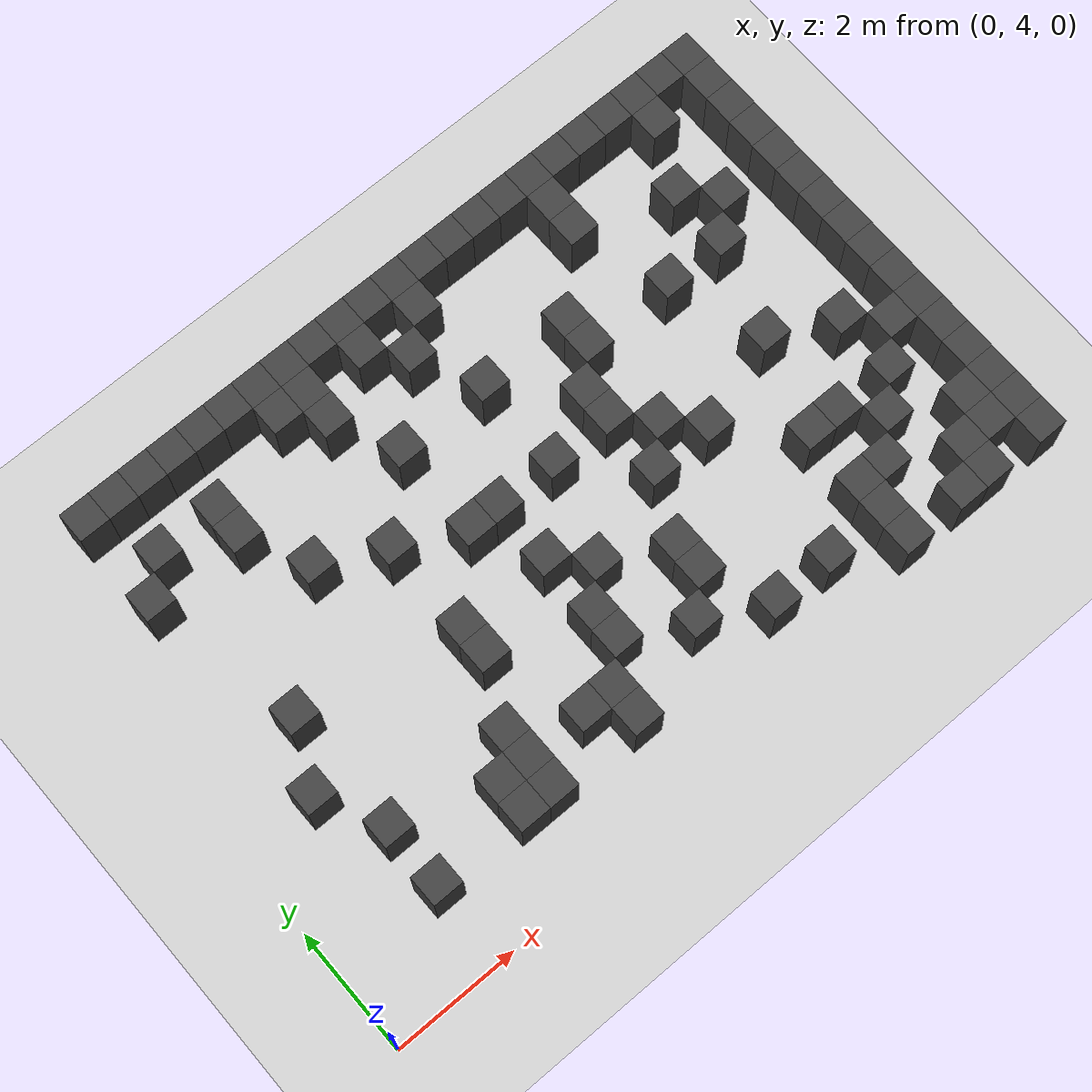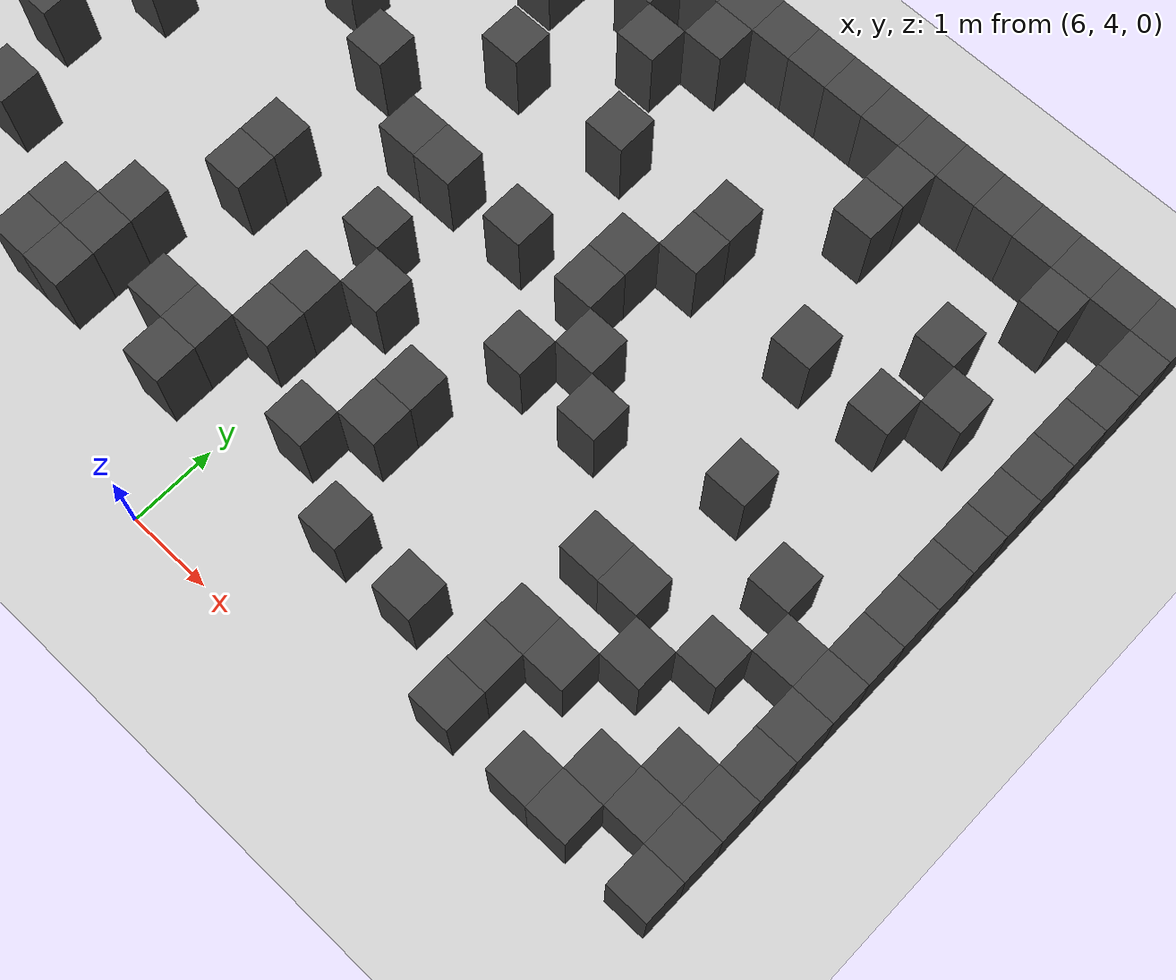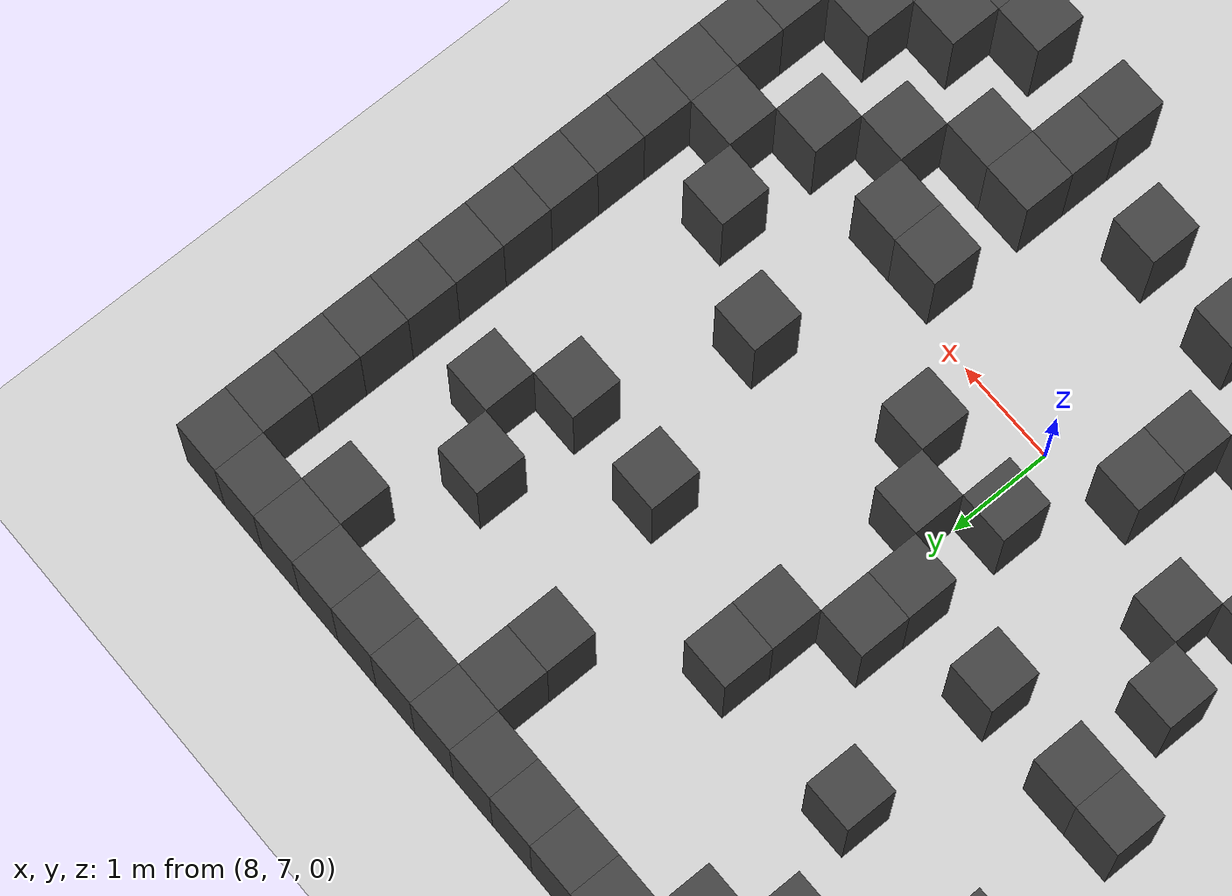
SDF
<sdf version="1.7">
 <world name="map_4009">
  <model name="ground_plane">
   <static>true</static>
   <link name="link">
    <collision name="collision">
     <geometry><plane><normal>0 0 1</normal><size>200 200</size></plane></geometry>
    </collision>
    <visual name="visual">
     <geometry><plane><normal>0 0 1</normal><size>200 200</size></plane></geometry>
     <material><ambient>0.8 0.8 0.8 1</ambient><diffuse>0.8 0.8 0.8 1</diffuse></material>
    </visual>
   </link>
  </model>
  <model name="maze_environment">
   <static>true</static>
   <link name="wall_27">
    <pose>1.250 12.250 0.500 0 0 0</pose>
    <collision name="col"><geometry><box><size>0.5 0.5 1.0</size></box></geometry></collision>
    <visual name="vis">
     <geometry><box><size>0.5 0.5 1.0</size></box></geometry>
     <material><ambient>0.15 0.15 0.15 1</ambient><diffuse>0.25 0.25 0.25 1</diffuse></material>
    </visual>
   </link>
   <link name="wall_28">
    <pose>1.750 12.250 0.500 0 0 0</pose>
    <collision name="col"><geometry><box><size>0.5 0.5 1.0</size></box></geometry></collision>
    <visual name="vis">
     <geometry><box><size>0.5 0.5 1.0</size></box></geometry>
     <material><ambient>0.15 0.15 0.15 1</ambient><diffuse>0.25 0.25 0.25 1</diffuse></material>
    </visual>
   </link>
   <link name="wall_29">
    <pose>2.250 12.250 0.500 0 0 0</pose>
    <collision name="col"><geometry><box><size>0.5 0.5 1.0</size></box></geometry></collision>
    <visual name="vis">
     <geometry><box><size>0.5 0.5 1.0</size></box></geometry>
     <material><ambient>0.15 0.15 0.15 1</ambient><diffuse>0.25 0.25 0.25 1</diffuse></material>
    </visual>
   </link>
   <link name="wall_30">
    <pose>2.750 12.250 0.500 0 0 0</pose>
    <collision name="col"><geometry><box><size>0.5 0.5 1.0</size></box></geometry></collision>
    <visual name="vis">
     <geometry><box><size>0.5 0.5 1.0</size></box></geometry>
     <material><ambient>0.15 0.15 0.15 1</ambient><diffuse>0.25 0.25 0.25 1</diffuse></material>
    </visual>
   </link>
   <link name="wall_31">
    <pose>3.250 12.250 0.500 0 0 0</pose>
    <collision name="col"><geometry><box><size>0.5 0.5 1.0</size></box></geometry></collision>
    <visual name="vis">
     <geometry><box><size>0.5 0.5 1.0</size></box></geometry>
     <material><ambient>0.15 0.15 0.15 1</ambient><diffuse>0.25 0.25 0.25 1</diffuse></material>
    </visual>
   </link>
   <link name="wall_32">
    <pose>3.750 12.250 0.500 0 0 0</pose>
    <collision name="col"><geometry><box><size>0.5 0.5 1.0</size></box></geometry></collision>
    <visual name="vis">
     <geometry><box><size>0.5 0.5 1.0</size></box></geometry>
     <material><ambient>0.15 0.15 0.15 1</ambient><diffuse>0.25 0.25 0.25 1</diffuse></material>
    </visual>
   </link>
   <link name="wall_33">
    <pose>4.250 12.250 0.500 0 0 0</pose>
    <collision name="col"><geometry><box><size>0.5 0.5 1.0</size></box></geometry></collision>
    <visual name="vis">
     <geometry><box><size>0.5 0.5 1.0</size></box></geometry>
     <material><ambient>0.15 0.15 0.15 1</ambient><diffuse>0.25 0.25 0.25 1</diffuse></material>
    </visual>
   </link>
   <link name="wall_34">
    <pose>4.750 12.250 0.500 0 0 0</pose>
    <collision name="col"><geometry><box><size>0.5 0.5 1.0</size></box></geometry></collision>
    <visual name="vis">
     <geometry><box><size>0.5 0.5 1.0</size></box></geometry>
     <material><ambient>0.15 0.15 0.15 1</ambient><diffuse>0.25 0.25 0.25 1</diffuse></material>
    </visual>
   </link>
   <link name="wall_35">
    <pose>5.250 12.250 0.500 0 0 0</pose>
    <collision name="col"><geometry><box><size>0.5 0.5 1.0</size></box></geometry></collision>
    <visual name="vis">
     <geometry><box><size>0.5 0.5 1.0</size></box></geometry>
     <material><ambient>0.15 0.15 0.15 1</ambient><diffuse>0.25 0.25 0.25 1</diffuse></material>
    </visual>
   </link>
   <link name="wall_36">
    <pose>5.750 12.250 0.500 0 0 0</pose>
    <collision name="col"><geometry><box><size>0.5 0.5 1.0</size></box></geometry></collision>
    <visual name="vis">
     <geometry><box><size>0.5 0.5 1.0</size></box></geometry>
     <material><ambient>0.15 0.15 0.15 1</ambient><diffuse>0.25 0.25 0.25 1</diffuse></material>
    </visual>
   </link>
   <link name="wall_37">
    <pose>6.250 12.250 0.500 0 0 0</pose>
    <collision name="col"><geometry><box><size>0.5 0.5 1.0</size></box></geometry></collision>
    <visual name="vis">
     <geometry><box><size>0.5 0.5 1.0</size></box></geometry>
     <material><ambient>0.15 0.15 0.15 1</ambient><diffuse>0.25 0.25 0.25 1</diffuse></material>
    </visual>
   </link>
   <link name="wall_38">
    <pose>6.750 12.250 0.500 0 0 0</pose>
    <collision name="col"><geometry><box><size>0.5 0.5 1.0</size></box></geometry></collision>
    <visual name="vis">
     <geometry><box><size>0.5 0.5 1.0</size></box></geometry>
     <material><ambient>0.15 0.15 0.15 1</ambient><diffuse>0.25 0.25 0.25 1</diffuse></material>
    </visual>
   </link>
   <link name="wall_39">
    <pose>7.250 12.250 0.500 0 0 0</pose>
    <collision name="col"><geometry><box><size>0.5 0.5 1.0</size></box></geometry></collision>
    <visual name="vis">
     <geometry><box><size>0.5 0.5 1.0</size></box></geometry>
     <material><ambient>0.15 0.15 0.15 1</ambient><diffuse>0.25 0.25 0.25 1</diffuse></material>
    </visual>
   </link>
   <link name="wall_40">
    <pose>7.750 12.250 0.500 0 0 0</pose>
    <collision name="col"><geometry><box><size>0.5 0.5 1.0</size></box></geometry></collision>
    <visual name="vis">
     <geometry><box><size>0.5 0.5 1.0</size></box></geometry>
     <material><ambient>0.15 0.15 0.15 1</ambient><diffuse>0.25 0.25 0.25 1</diffuse></material>
    </visual>
   </link>
   <link name="wall_41">
    <pose>8.250 12.250 0.500 0 0 0</pose>
    <collision name="col"><geometry><box><size>0.5 0.5 1.0</size></box></geometry></collision>
    <visual name="vis">
     <geometry><box><size>0.5 0.5 1.0</size></box></geometry>
     <material><ambient>0.15 0.15 0.15 1</ambient><diffuse>0.25 0.25 0.25 1</diffuse></material>
    </visual>
   </link>
   <link name="wall_42">
    <pose>8.750 12.250 0.500 0 0 0</pose>
    <collision name="col"><geometry><box><size>0.5 0.5 1.0</size></box></geometry></collision>
    <visual name="vis">
     <geometry><box><size>0.5 0.5 1.0</size></box></geometry>
     <material><ambient>0.15 0.15 0.15 1</ambient><diffuse>0.25 0.25 0.25 1</diffuse></material>
    </visual>
   </link>
   <link name="wall_43">
    <pose>9.250 12.250 0.500 0 0 0</pose>
    <collision name="col"><geometry><box><size>0.5 0.5 1.0</size></box></geometry></collision>
    <visual name="vis">
     <geometry><box><size>0.5 0.5 1.0</size></box></geometry>
     <material><ambient>0.15 0.15 0.15 1</ambient><diffuse>0.25 0.25 0.25 1</diffuse></material>
    </visual>
   </link>
   <link name="wall_44">
    <pose>9.750 12.250 0.500 0 0 0</pose>
    <collision name="col"><geometry><box><size>0.5 0.5 1.0</size></box></geometry></collision>
    <visual name="vis">
     <geometry><box><size>0.5 0.5 1.0</size></box></geometry>
     <material><ambient>0.15 0.15 0.15 1</ambient><diffuse>0.25 0.25 0.25 1</diffuse></material>
    </visual>
   </link>
   <link name="wall_45">
    <pose>10.250 12.250 0.500 0 0 0</pose>
    <collision name="col"><geometry><box><size>0.5 0.5 1.0</size></box></geometry></collision>
    <visual name="vis">
     <geometry><box><size>0.5 0.5 1.0</size></box></geometry>
     <material><ambient>0.15 0.15 0.15 1</ambient><diffuse>0.25 0.25 0.25 1</diffuse></material>
    </visual>
   </link>
   <link name="wall_46">
    <pose>10.750 12.250 0.500 0 0 0</pose>
    <collision name="col"><geometry><box><size>0.5 0.5 1.0</size></box></geometry></collision>
    <visual name="vis">
     <geometry><box><size>0.5 0.5 1.0</size></box></geometry>
     <material><ambient>0.15 0.15 0.15 1</ambient><diffuse>0.25 0.25 0.25 1</diffuse></material>
    </visual>
   </link>
   <link name="wall_47">
    <pose>11.250 12.250 0.500 0 0 0</pose>
    <collision name="col"><geometry><box><size>0.5 0.5 1.0</size></box></geometry></collision>
    <visual name="vis">
     <geometry><box><size>0.5 0.5 1.0</size></box></geometry>
     <material><ambient>0.15 0.15 0.15 1</ambient><diffuse>0.25 0.25 0.25 1</diffuse></material>
    </visual>
   </link>
   <link name="wall_48">
    <pose>11.750 12.250 0.500 0 0 0</pose>
    <collision name="col"><geometry><box><size>0.5 0.5 1.0</size></box></geometry></collision>
    <visual name="vis">
     <geometry><box><size>0.5 0.5 1.0</size></box></geometry>
     <material><ambient>0.15 0.15 0.15 1</ambient><diffuse>0.25 0.25 0.25 1</diffuse></material>
    </visual>
   </link>
   <link name="wall_49">
    <pose>12.250 12.250 0.500 0 0 0</pose>
    <collision name="col"><geometry><box><size>0.5 0.5 1.0</size></box></geometry></collision>
    <visual name="vis">
     <geometry><box><size>0.5 0.5 1.0</size></box></geometry>
     <material><ambient>0.15 0.15 0.15 1</ambient><diffuse>0.25 0.25 0.25 1</diffuse></material>
    </visual>
   </link>
   <link name="wall_57">
    <pose>4.250 11.750 0.500 0 0 0</pose>
    <collision name="col"><geometry><box><size>0.5 0.5 1.0</size></box></geometry></collision>
    <visual name="vis">
     <geometry><box><size>0.5 0.5 1.0</size></box></geometry>
     <material><ambient>0.15 0.15 0.15 1</ambient><diffuse>0.25 0.25 0.25 1</diffuse></material>
    </visual>
   </link>
   <link name="wall_58">
    <pose>4.750 11.750 0.500 0 0 0</pose>
    <collision name="col"><geometry><box><size>0.5 0.5 1.0</size></box></geometry></collision>
    <visual name="vis">
     <geometry><box><size>0.5 0.5 1.0</size></box></geometry>
     <material><ambient>0.15 0.15 0.15 1</ambient><diffuse>0.25 0.25 0.25 1</diffuse></material>
    </visual>
   </link>
   <link name="wall_59">
    <pose>5.750 11.750 0.500 0 0 0</pose>
    <collision name="col"><geometry><box><size>0.5 0.5 1.0</size></box></geometry></collision>
    <visual name="vis">
     <geometry><box><size>0.5 0.5 1.0</size></box></geometry>
     <material><ambient>0.15 0.15 0.15 1</ambient><diffuse>0.25 0.25 0.25 1</diffuse></material>
    </visual>
   </link>
   <link name="wall_60">
    <pose>6.750 11.750 0.500 0 0 0</pose>
    <collision name="col"><geometry><box><size>0.5 0.5 1.0</size></box></geometry></collision>
    <visual name="vis">
     <geometry><box><size>0.5 0.5 1.0</size></box></geometry>
     <material><ambient>0.15 0.15 0.15 1</ambient><diffuse>0.25 0.25 0.25 1</diffuse></material>
    </visual>
   </link>
   <link name="wall_61">
    <pose>9.250 11.750 0.500 0 0 0</pose>
    <collision name="col"><geometry><box><size>0.5 0.5 1.0</size></box></geometry></collision>
    <visual name="vis">
     <geometry><box><size>0.5 0.5 1.0</size></box></geometry>
     <material><ambient>0.15 0.15 0.15 1</ambient><diffuse>0.25 0.25 0.25 1</diffuse></material>
    </visual>
   </link>
   <link name="wall_62">
    <pose>11.250 11.750 0.500 0 0 0</pose>
    <collision name="col"><geometry><box><size>0.5 0.5 1.0</size></box></geometry></collision>
    <visual name="vis">
     <geometry><box><size>0.5 0.5 1.0</size></box></geometry>
     <material><ambient>0.15 0.15 0.15 1</ambient><diffuse>0.25 0.25 0.25 1</diffuse></material>
    </visual>
   </link>
   <link name="wall_63">
    <pose>12.250 11.750 0.500 0 0 0</pose>
    <collision name="col"><geometry><box><size>0.5 0.5 1.0</size></box></geometry></collision>
    <visual name="vis">
     <geometry><box><size>0.5 0.5 1.0</size></box></geometry>
     <material><ambient>0.15 0.15 0.15 1</ambient><diffuse>0.25 0.25 0.25 1</diffuse></material>
    </visual>
   </link>
   <link name="wall_73">
    <pose>1.750 11.250 0.500 0 0 0</pose>
    <collision name="col"><geometry><box><size>0.5 0.5 1.0</size></box></geometry></collision>
    <visual name="vis">
     <geometry><box><size>0.5 0.5 1.0</size></box></geometry>
     <material><ambient>0.15 0.15 0.15 1</ambient><diffuse>0.25 0.25 0.25 1</diffuse></material>
    </visual>
   </link>
   <link name="wall_74">
    <pose>2.750 11.250 0.500 0 0 0</pose>
    <collision name="col"><geometry><box><size>0.5 0.5 1.0</size></box></geometry></collision>
    <visual name="vis">
     <geometry><box><size>0.5 0.5 1.0</size></box></geometry>
     <material><ambient>0.15 0.15 0.15 1</ambient><diffuse>0.25 0.25 0.25 1</diffuse></material>
    </visual>
   </link>
   <link name="wall_75">
    <pose>4.750 11.250 0.500 0 0 0</pose>
    <collision name="col"><geometry><box><size>0.5 0.5 1.0</size></box></geometry></collision>
    <visual name="vis">
     <geometry><box><size>0.5 0.5 1.0</size></box></geometry>
     <material><ambient>0.15 0.15 0.15 1</ambient><diffuse>0.25 0.25 0.25 1</diffuse></material>
    </visual>
   </link>
   <link name="wall_76">
    <pose>6.250 11.250 0.500 0 0 0</pose>
    <collision name="col"><geometry><box><size>0.5 0.5 1.0</size></box></geometry></collision>
    <visual name="vis">
     <geometry><box><size>0.5 0.5 1.0</size></box></geometry>
     <material><ambient>0.15 0.15 0.15 1</ambient><diffuse>0.25 0.25 0.25 1</diffuse></material>
    </visual>
   </link>
   <link name="wall_77">
    <pose>9.250 11.250 0.500 0 0 0</pose>
    <collision name="col"><geometry><box><size>0.5 0.5 1.0</size></box></geometry></collision>
    <visual name="vis">
     <geometry><box><size>0.5 0.5 1.0</size></box></geometry>
     <material><ambient>0.15 0.15 0.15 1</ambient><diffuse>0.25 0.25 0.25 1</diffuse></material>
    </visual>
   </link>
   <link name="wall_78">
    <pose>12.250 11.250 0.500 0 0 0</pose>
    <collision name="col"><geometry><box><size>0.5 0.5 1.0</size></box></geometry></collision>
    <visual name="vis">
     <geometry><box><size>0.5 0.5 1.0</size></box></geometry>
     <material><ambient>0.15 0.15 0.15 1</ambient><diffuse>0.25 0.25 0.25 1</diffuse></material>
    </visual>
   </link>
   <link name="wall_83">
    <pose>1.250 10.750 0.500 0 0 0</pose>
    <collision name="col"><geometry><box><size>0.5 0.5 1.0</size></box></geometry></collision>
    <visual name="vis">
     <geometry><box><size>0.5 0.5 1.0</size></box></geometry>
     <material><ambient>0.15 0.15 0.15 1</ambient><diffuse>0.25 0.25 0.25 1</diffuse></material>
    </visual>
   </link>
   <link name="wall_84">
    <pose>2.750 10.750 0.500 0 0 0</pose>
    <collision name="col"><geometry><box><size>0.5 0.5 1.0</size></box></geometry></collision>
    <visual name="vis">
     <geometry><box><size>0.5 0.5 1.0</size></box></geometry>
     <material><ambient>0.15 0.15 0.15 1</ambient><diffuse>0.25 0.25 0.25 1</diffuse></material>
    </visual>
   </link>
   <link name="wall_85">
    <pose>10.750 10.750 0.500 0 0 0</pose>
    <collision name="col"><geometry><box><size>0.5 0.5 1.0</size></box></geometry></collision>
    <visual name="vis">
     <geometry><box><size>0.5 0.5 1.0</size></box></geometry>
     <material><ambient>0.15 0.15 0.15 1</ambient><diffuse>0.25 0.25 0.25 1</diffuse></material>
    </visual>
   </link>
   <link name="wall_86">
    <pose>12.250 10.750 0.500 0 0 0</pose>
    <collision name="col"><geometry><box><size>0.5 0.5 1.0</size></box></geometry></collision>
    <visual name="vis">
     <geometry><box><size>0.5 0.5 1.0</size></box></geometry>
     <material><ambient>0.15 0.15 0.15 1</ambient><diffuse>0.25 0.25 0.25 1</diffuse></material>
    </visual>
   </link>
   <link name="wall_93">
    <pose>5.250 10.250 0.500 0 0 0</pose>
    <collision name="col"><geometry><box><size>0.5 0.5 1.0</size></box></geometry></collision>
    <visual name="vis">
     <geometry><box><size>0.5 0.5 1.0</size></box></geometry>
     <material><ambient>0.15 0.15 0.15 1</ambient><diffuse>0.25 0.25 0.25 1</diffuse></material>
    </visual>
   </link>
   <link name="wall_94">
    <pose>6.750 10.250 0.500 0 0 0</pose>
    <collision name="col"><geometry><box><size>0.5 0.5 1.0</size></box></geometry></collision>
    <visual name="vis">
     <geometry><box><size>0.5 0.5 1.0</size></box></geometry>
     <material><ambient>0.15 0.15 0.15 1</ambient><diffuse>0.25 0.25 0.25 1</diffuse></material>
    </visual>
   </link>
   <link name="wall_95">
    <pose>8.250 10.250 0.500 0 0 0</pose>
    <collision name="col"><geometry><box><size>0.5 0.5 1.0</size></box></geometry></collision>
    <visual name="vis">
     <geometry><box><size>0.5 0.5 1.0</size></box></geometry>
     <material><ambient>0.15 0.15 0.15 1</ambient><diffuse>0.25 0.25 0.25 1</diffuse></material>
    </visual>
   </link>
   <link name="wall_96">
    <pose>11.250 10.250 0.500 0 0 0</pose>
    <collision name="col"><geometry><box><size>0.5 0.5 1.0</size></box></geometry></collision>
    <visual name="vis">
     <geometry><box><size>0.5 0.5 1.0</size></box></geometry>
     <material><ambient>0.15 0.15 0.15 1</ambient><diffuse>0.25 0.25 0.25 1</diffuse></material>
    </visual>
   </link>
   <link name="wall_97">
    <pose>12.250 10.250 0.500 0 0 0</pose>
    <collision name="col"><geometry><box><size>0.5 0.5 1.0</size></box></geometry></collision>
    <visual name="vis">
     <geometry><box><size>0.5 0.5 1.0</size></box></geometry>
     <material><ambient>0.15 0.15 0.15 1</ambient><diffuse>0.25 0.25 0.25 1</diffuse></material>
    </visual>
   </link>
   <link name="wall_102">
    <pose>3.250 9.750 0.500 0 0 0</pose>
    <collision name="col"><geometry><box><size>0.5 0.5 1.0</size></box></geometry></collision>
    <visual name="vis">
     <geometry><box><size>0.5 0.5 1.0</size></box></geometry>
     <material><ambient>0.15 0.15 0.15 1</ambient><diffuse>0.25 0.25 0.25 1</diffuse></material>
    </visual>
   </link>
   <link name="wall_103">
    <pose>8.250 9.750 0.500 0 0 0</pose>
    <collision name="col"><geometry><box><size>0.5 0.5 1.0</size></box></geometry></collision>
    <visual name="vis">
     <geometry><box><size>0.5 0.5 1.0</size></box></geometry>
     <material><ambient>0.15 0.15 0.15 1</ambient><diffuse>0.25 0.25 0.25 1</diffuse></material>
    </visual>
   </link>
   <link name="wall_104">
    <pose>9.750 9.750 0.500 0 0 0</pose>
    <collision name="col"><geometry><box><size>0.5 0.5 1.0</size></box></geometry></collision>
    <visual name="vis">
     <geometry><box><size>0.5 0.5 1.0</size></box></geometry>
     <material><ambient>0.15 0.15 0.15 1</ambient><diffuse>0.25 0.25 0.25 1</diffuse></material>
    </visual>
   </link>
   <link name="wall_105">
    <pose>10.750 9.750 0.500 0 0 0</pose>
    <collision name="col"><geometry><box><size>0.5 0.5 1.0</size></box></geometry></collision>
    <visual name="vis">
     <geometry><box><size>0.5 0.5 1.0</size></box></geometry>
     <material><ambient>0.15 0.15 0.15 1</ambient><diffuse>0.25 0.25 0.25 1</diffuse></material>
    </visual>
   </link>
   <link name="wall_106">
    <pose>12.250 9.750 0.500 0 0 0</pose>
    <collision name="col"><geometry><box><size>0.5 0.5 1.0</size></box></geometry></collision>
    <visual name="vis">
     <geometry><box><size>0.5 0.5 1.0</size></box></geometry>
     <material><ambient>0.15 0.15 0.15 1</ambient><diffuse>0.25 0.25 0.25 1</diffuse></material>
    </visual>
   </link>
   <link name="wall_114">
    <pose>4.250 9.250 0.500 0 0 0</pose>
    <collision name="col"><geometry><box><size>0.5 0.5 1.0</size></box></geometry></collision>
    <visual name="vis">
     <geometry><box><size>0.5 0.5 1.0</size></box></geometry>
     <material><ambient>0.15 0.15 0.15 1</ambient><diffuse>0.25 0.25 0.25 1</diffuse></material>
    </visual>
   </link>
   <link name="wall_115">
    <pose>7.750 9.250 0.500 0 0 0</pose>
    <collision name="col"><geometry><box><size>0.5 0.5 1.0</size></box></geometry></collision>
    <visual name="vis">
     <geometry><box><size>0.5 0.5 1.0</size></box></geometry>
     <material><ambient>0.15 0.15 0.15 1</ambient><diffuse>0.25 0.25 0.25 1</diffuse></material>
    </visual>
   </link>
   <link name="wall_116">
    <pose>12.250 9.250 0.500 0 0 0</pose>
    <collision name="col"><geometry><box><size>0.5 0.5 1.0</size></box></geometry></collision>
    <visual name="vis">
     <geometry><box><size>0.5 0.5 1.0</size></box></geometry>
     <material><ambient>0.15 0.15 0.15 1</ambient><diffuse>0.25 0.25 0.25 1</diffuse></material>
    </visual>
   </link>
   <link name="wall_121">
    <pose>5.250 8.750 0.500 0 0 0</pose>
    <collision name="col"><geometry><box><size>0.5 0.5 1.0</size></box></geometry></collision>
    <visual name="vis">
     <geometry><box><size>0.5 0.5 1.0</size></box></geometry>
     <material><ambient>0.15 0.15 0.15 1</ambient><diffuse>0.25 0.25 0.25 1</diffuse></material>
    </visual>
   </link>
   <link name="wall_122">
    <pose>5.750 8.750 0.500 0 0 0</pose>
    <collision name="col"><geometry><box><size>0.5 0.5 1.0</size></box></geometry></collision>
    <visual name="vis">
     <geometry><box><size>0.5 0.5 1.0</size></box></geometry>
     <material><ambient>0.15 0.15 0.15 1</ambient><diffuse>0.25 0.25 0.25 1</diffuse></material>
    </visual>
   </link>
   <link name="wall_123">
    <pose>6.750 8.750 0.500 0 0 0</pose>
    <collision name="col"><geometry><box><size>0.5 0.5 1.0</size></box></geometry></collision>
    <visual name="vis">
     <geometry><box><size>0.5 0.5 1.0</size></box></geometry>
     <material><ambient>0.15 0.15 0.15 1</ambient><diffuse>0.25 0.25 0.25 1</diffuse></material>
    </visual>
   </link>
   <link name="wall_124">
    <pose>7.750 8.750 0.500 0 0 0</pose>
    <collision name="col"><geometry><box><size>0.5 0.5 1.0</size></box></geometry></collision>
    <visual name="vis">
     <geometry><box><size>0.5 0.5 1.0</size></box></geometry>
     <material><ambient>0.15 0.15 0.15 1</ambient><diffuse>0.25 0.25 0.25 1</diffuse></material>
    </visual>
   </link>
   <link name="wall_125">
    <pose>12.250 8.750 0.500 0 0 0</pose>
    <collision name="col"><geometry><box><size>0.5 0.5 1.0</size></box></geometry></collision>
    <visual name="vis">
     <geometry><box><size>0.5 0.5 1.0</size></box></geometry>
     <material><ambient>0.15 0.15 0.15 1</ambient><diffuse>0.25 0.25 0.25 1</diffuse></material>
    </visual>
   </link>
   <link name="wall_129">
    <pose>1.750 8.250 0.500 0 0 0</pose>
    <collision name="col"><geometry><box><size>0.5 0.5 1.0</size></box></geometry></collision>
    <visual name="vis">
     <geometry><box><size>0.5 0.5 1.0</size></box></geometry>
     <material><ambient>0.15 0.15 0.15 1</ambient><diffuse>0.25 0.25 0.25 1</diffuse></material>
    </visual>
   </link>
   <link name="wall_130">
    <pose>8.250 8.250 0.500 0 0 0</pose>
    <collision name="col"><geometry><box><size>0.5 0.5 1.0</size></box></geometry></collision>
    <visual name="vis">
     <geometry><box><size>0.5 0.5 1.0</size></box></geometry>
     <material><ambient>0.15 0.15 0.15 1</ambient><diffuse>0.25 0.25 0.25 1</diffuse></material>
    </visual>
   </link>
   <link name="wall_131">
    <pose>10.250 8.250 0.500 0 0 0</pose>
    <collision name="col"><geometry><box><size>0.5 0.5 1.0</size></box></geometry></collision>
    <visual name="vis">
     <geometry><box><size>0.5 0.5 1.0</size></box></geometry>
     <material><ambient>0.15 0.15 0.15 1</ambient><diffuse>0.25 0.25 0.25 1</diffuse></material>
    </visual>
   </link>
   <link name="wall_132">
    <pose>12.250 8.250 0.500 0 0 0</pose>
    <collision name="col"><geometry><box><size>0.5 0.5 1.0</size></box></geometry></collision>
    <visual name="vis">
     <geometry><box><size>0.5 0.5 1.0</size></box></geometry>
     <material><ambient>0.15 0.15 0.15 1</ambient><diffuse>0.25 0.25 0.25 1</diffuse></material>
    </visual>
   </link>
   <link name="wall_138">
    <pose>4.250 7.750 0.500 0 0 0</pose>
    <collision name="col"><geometry><box><size>0.5 0.5 1.0</size></box></geometry></collision>
    <visual name="vis">
     <geometry><box><size>0.5 0.5 1.0</size></box></geometry>
     <material><ambient>0.15 0.15 0.15 1</ambient><diffuse>0.25 0.25 0.25 1</diffuse></material>
    </visual>
   </link>
   <link name="wall_139">
    <pose>5.750 7.750 0.500 0 0 0</pose>
    <collision name="col"><geometry><box><size>0.5 0.5 1.0</size></box></geometry></collision>
    <visual name="vis">
     <geometry><box><size>0.5 0.5 1.0</size></box></geometry>
     <material><ambient>0.15 0.15 0.15 1</ambient><diffuse>0.25 0.25 0.25 1</diffuse></material>
    </visual>
   </link>
   <link name="wall_140">
    <pose>7.750 7.750 0.500 0 0 0</pose>
    <collision name="col"><geometry><box><size>0.5 0.5 1.0</size></box></geometry></collision>
    <visual name="vis">
     <geometry><box><size>0.5 0.5 1.0</size></box></geometry>
     <material><ambient>0.15 0.15 0.15 1</ambient><diffuse>0.25 0.25 0.25 1</diffuse></material>
    </visual>
   </link>
   <link name="wall_141">
    <pose>8.750 7.750 0.500 0 0 0</pose>
    <collision name="col"><geometry><box><size>0.5 0.5 1.0</size></box></geometry></collision>
    <visual name="vis">
     <geometry><box><size>0.5 0.5 1.0</size></box></geometry>
     <material><ambient>0.15 0.15 0.15 1</ambient><diffuse>0.25 0.25 0.25 1</diffuse></material>
    </visual>
   </link>
   <link name="wall_142">
    <pose>11.250 7.750 0.500 0 0 0</pose>
    <collision name="col"><geometry><box><size>0.5 0.5 1.0</size></box></geometry></collision>
    <visual name="vis">
     <geometry><box><size>0.5 0.5 1.0</size></box></geometry>
     <material><ambient>0.15 0.15 0.15 1</ambient><diffuse>0.25 0.25 0.25 1</diffuse></material>
    </visual>
   </link>
   <link name="wall_143">
    <pose>12.250 7.750 0.500 0 0 0</pose>
    <collision name="col"><geometry><box><size>0.5 0.5 1.0</size></box></geometry></collision>
    <visual name="vis">
     <geometry><box><size>0.5 0.5 1.0</size></box></geometry>
     <material><ambient>0.15 0.15 0.15 1</ambient><diffuse>0.25 0.25 0.25 1</diffuse></material>
    </visual>
   </link>
   <link name="wall_150">
    <pose>1.250 7.250 0.500 0 0 0</pose>
    <collision name="col"><geometry><box><size>0.5 0.5 1.0</size></box></geometry></collision>
    <visual name="vis">
     <geometry><box><size>0.5 0.5 1.0</size></box></geometry>
     <material><ambient>0.15 0.15 0.15 1</ambient><diffuse>0.25 0.25 0.25 1</diffuse></material>
    </visual>
   </link>
   <link name="wall_151">
    <pose>4.250 7.250 0.500 0 0 0</pose>
    <collision name="col"><geometry><box><size>0.5 0.5 1.0</size></box></geometry></collision>
    <visual name="vis">
     <geometry><box><size>0.5 0.5 1.0</size></box></geometry>
     <material><ambient>0.15 0.15 0.15 1</ambient><diffuse>0.25 0.25 0.25 1</diffuse></material>
    </visual>
   </link>
   <link name="wall_152">
    <pose>6.250 7.250 0.500 0 0 0</pose>
    <collision name="col"><geometry><box><size>0.5 0.5 1.0</size></box></geometry></collision>
    <visual name="vis">
     <geometry><box><size>0.5 0.5 1.0</size></box></geometry>
     <material><ambient>0.15 0.15 0.15 1</ambient><diffuse>0.25 0.25 0.25 1</diffuse></material>
    </visual>
   </link>
   <link name="wall_153">
    <pose>11.750 7.250 0.500 0 0 0</pose>
    <collision name="col"><geometry><box><size>0.5 0.5 1.0</size></box></geometry></collision>
    <visual name="vis">
     <geometry><box><size>0.5 0.5 1.0</size></box></geometry>
     <material><ambient>0.15 0.15 0.15 1</ambient><diffuse>0.25 0.25 0.25 1</diffuse></material>
    </visual>
   </link>
   <link name="wall_154">
    <pose>12.250 7.250 0.500 0 0 0</pose>
    <collision name="col"><geometry><box><size>0.5 0.5 1.0</size></box></geometry></collision>
    <visual name="vis">
     <geometry><box><size>0.5 0.5 1.0</size></box></geometry>
     <material><ambient>0.15 0.15 0.15 1</ambient><diffuse>0.25 0.25 0.25 1</diffuse></material>
    </visual>
   </link>
   <link name="wall_160">
    <pose>5.750 6.750 0.500 0 0 0</pose>
    <collision name="col"><geometry><box><size>0.5 0.5 1.0</size></box></geometry></collision>
    <visual name="vis">
     <geometry><box><size>0.5 0.5 1.0</size></box></geometry>
     <material><ambient>0.15 0.15 0.15 1</ambient><diffuse>0.25 0.25 0.25 1</diffuse></material>
    </visual>
   </link>
   <link name="wall_161">
    <pose>7.250 6.750 0.500 0 0 0</pose>
    <collision name="col"><geometry><box><size>0.5 0.5 1.0</size></box></geometry></collision>
    <visual name="vis">
     <geometry><box><size>0.5 0.5 1.0</size></box></geometry>
     <material><ambient>0.15 0.15 0.15 1</ambient><diffuse>0.25 0.25 0.25 1</diffuse></material>
    </visual>
   </link>
   <link name="wall_162">
    <pose>9.750 6.750 0.500 0 0 0</pose>
    <collision name="col"><geometry><box><size>0.5 0.5 1.0</size></box></geometry></collision>
    <visual name="vis">
     <geometry><box><size>0.5 0.5 1.0</size></box></geometry>
     <material><ambient>0.15 0.15 0.15 1</ambient><diffuse>0.25 0.25 0.25 1</diffuse></material>
    </visual>
   </link>
   <link name="wall_163">
    <pose>10.250 6.750 0.500 0 0 0</pose>
    <collision name="col"><geometry><box><size>0.5 0.5 1.0</size></box></geometry></collision>
    <visual name="vis">
     <geometry><box><size>0.5 0.5 1.0</size></box></geometry>
     <material><ambient>0.15 0.15 0.15 1</ambient><diffuse>0.25 0.25 0.25 1</diffuse></material>
    </visual>
   </link>
   <link name="wall_164">
    <pose>11.250 6.750 0.500 0 0 0</pose>
    <collision name="col"><geometry><box><size>0.5 0.5 1.0</size></box></geometry></collision>
    <visual name="vis">
     <geometry><box><size>0.5 0.5 1.0</size></box></geometry>
     <material><ambient>0.15 0.15 0.15 1</ambient><diffuse>0.25 0.25 0.25 1</diffuse></material>
    </visual>
   </link>
   <link name="wall_165">
    <pose>12.250 6.750 0.500 0 0 0</pose>
    <collision name="col"><geometry><box><size>0.5 0.5 1.0</size></box></geometry></collision>
    <visual name="vis">
     <geometry><box><size>0.5 0.5 1.0</size></box></geometry>
     <material><ambient>0.15 0.15 0.15 1</ambient><diffuse>0.25 0.25 0.25 1</diffuse></material>
    </visual>
   </link>
   <link name="wall_169">
    <pose>1.750 6.250 0.500 0 0 0</pose>
    <collision name="col"><geometry><box><size>0.5 0.5 1.0</size></box></geometry></collision>
    <visual name="vis">
     <geometry><box><size>0.5 0.5 1.0</size></box></geometry>
     <material><ambient>0.15 0.15 0.15 1</ambient><diffuse>0.25 0.25 0.25 1</diffuse></material>
    </visual>
   </link>
   <link name="wall_170">
    <pose>3.750 6.250 0.500 0 0 0</pose>
    <collision name="col"><geometry><box><size>0.5 0.5 1.0</size></box></geometry></collision>
    <visual name="vis">
     <geometry><box><size>0.5 0.5 1.0</size></box></geometry>
     <material><ambient>0.15 0.15 0.15 1</ambient><diffuse>0.25 0.25 0.25 1</diffuse></material>
    </visual>
   </link>
   <link name="wall_171">
    <pose>5.750 6.250 0.500 0 0 0</pose>
    <collision name="col"><geometry><box><size>0.5 0.5 1.0</size></box></geometry></collision>
    <visual name="vis">
     <geometry><box><size>0.5 0.5 1.0</size></box></geometry>
     <material><ambient>0.15 0.15 0.15 1</ambient><diffuse>0.25 0.25 0.25 1</diffuse></material>
    </visual>
   </link>
   <link name="wall_172">
    <pose>7.250 6.250 0.500 0 0 0</pose>
    <collision name="col"><geometry><box><size>0.5 0.5 1.0</size></box></geometry></collision>
    <visual name="vis">
     <geometry><box><size>0.5 0.5 1.0</size></box></geometry>
     <material><ambient>0.15 0.15 0.15 1</ambient><diffuse>0.25 0.25 0.25 1</diffuse></material>
    </visual>
   </link>
   <link name="wall_173">
    <pose>10.750 6.250 0.500 0 0 0</pose>
    <collision name="col"><geometry><box><size>0.5 0.5 1.0</size></box></geometry></collision>
    <visual name="vis">
     <geometry><box><size>0.5 0.5 1.0</size></box></geometry>
     <material><ambient>0.15 0.15 0.15 1</ambient><diffuse>0.25 0.25 0.25 1</diffuse></material>
    </visual>
   </link>
   <link name="wall_174">
    <pose>12.250 6.250 0.500 0 0 0</pose>
    <collision name="col"><geometry><box><size>0.5 0.5 1.0</size></box></geometry></collision>
    <visual name="vis">
     <geometry><box><size>0.5 0.5 1.0</size></box></geometry>
     <material><ambient>0.15 0.15 0.15 1</ambient><diffuse>0.25 0.25 0.25 1</diffuse></material>
    </visual>
   </link>
   <link name="wall_183">
    <pose>3.250 5.750 0.500 0 0 0</pose>
    <collision name="col"><geometry><box><size>0.5 0.5 1.0</size></box></geometry></collision>
    <visual name="vis">
     <geometry><box><size>0.5 0.5 1.0</size></box></geometry>
     <material><ambient>0.15 0.15 0.15 1</ambient><diffuse>0.25 0.25 0.25 1</diffuse></material>
    </visual>
   </link>
   <link name="wall_184">
    <pose>3.750 5.750 0.500 0 0 0</pose>
    <collision name="col"><geometry><box><size>0.5 0.5 1.0</size></box></geometry></collision>
    <visual name="vis">
     <geometry><box><size>0.5 0.5 1.0</size></box></geometry>
     <material><ambient>0.15 0.15 0.15 1</ambient><diffuse>0.25 0.25 0.25 1</diffuse></material>
    </visual>
   </link>
   <link name="wall_185">
    <pose>4.750 5.750 0.500 0 0 0</pose>
    <collision name="col"><geometry><box><size>0.5 0.5 1.0</size></box></geometry></collision>
    <visual name="vis">
     <geometry><box><size>0.5 0.5 1.0</size></box></geometry>
     <material><ambient>0.15 0.15 0.15 1</ambient><diffuse>0.25 0.25 0.25 1</diffuse></material>
    </visual>
   </link>
   <link name="wall_186">
    <pose>5.250 5.750 0.500 0 0 0</pose>
    <collision name="col"><geometry><box><size>0.5 0.5 1.0</size></box></geometry></collision>
    <visual name="vis">
     <geometry><box><size>0.5 0.5 1.0</size></box></geometry>
     <material><ambient>0.15 0.15 0.15 1</ambient><diffuse>0.25 0.25 0.25 1</diffuse></material>
    </visual>
   </link>
   <link name="wall_187">
    <pose>6.750 5.750 0.500 0 0 0</pose>
    <collision name="col"><geometry><box><size>0.5 0.5 1.0</size></box></geometry></collision>
    <visual name="vis">
     <geometry><box><size>0.5 0.5 1.0</size></box></geometry>
     <material><ambient>0.15 0.15 0.15 1</ambient><diffuse>0.25 0.25 0.25 1</diffuse></material>
    </visual>
   </link>
   <link name="wall_188">
    <pose>9.750 5.750 0.500 0 0 0</pose>
    <collision name="col"><geometry><box><size>0.5 0.5 1.0</size></box></geometry></collision>
    <visual name="vis">
     <geometry><box><size>0.5 0.5 1.0</size></box></geometry>
     <material><ambient>0.15 0.15 0.15 1</ambient><diffuse>0.25 0.25 0.25 1</diffuse></material>
    </visual>
   </link>
   <link name="wall_189">
    <pose>10.250 5.750 0.500 0 0 0</pose>
    <collision name="col"><geometry><box><size>0.5 0.5 1.0</size></box></geometry></collision>
    <visual name="vis">
     <geometry><box><size>0.5 0.5 1.0</size></box></geometry>
     <material><ambient>0.15 0.15 0.15 1</ambient><diffuse>0.25 0.25 0.25 1</diffuse></material>
    </visual>
   </link>
   <link name="wall_190">
    <pose>11.750 5.750 0.500 0 0 0</pose>
    <collision name="col"><geometry><box><size>0.5 0.5 1.0</size></box></geometry></collision>
    <visual name="vis">
     <geometry><box><size>0.5 0.5 1.0</size></box></geometry>
     <material><ambient>0.15 0.15 0.15 1</ambient><diffuse>0.25 0.25 0.25 1</diffuse></material>
    </visual>
   </link>
   <link name="wall_191">
    <pose>12.250 5.750 0.500 0 0 0</pose>
    <collision name="col"><geometry><box><size>0.5 0.5 1.0</size></box></geometry></collision>
    <visual name="vis">
     <geometry><box><size>0.5 0.5 1.0</size></box></geometry>
     <material><ambient>0.15 0.15 0.15 1</ambient><diffuse>0.25 0.25 0.25 1</diffuse></material>
    </visual>
   </link>
   <link name="wall_200">
    <pose>1.750 5.250 0.500 0 0 0</pose>
    <collision name="col"><geometry><box><size>0.5 0.5 1.0</size></box></geometry></collision>
    <visual name="vis">
     <geometry><box><size>0.5 0.5 1.0</size></box></geometry>
     <material><ambient>0.15 0.15 0.15 1</ambient><diffuse>0.25 0.25 0.25 1</diffuse></material>
    </visual>
   </link>
   <link name="wall_201">
    <pose>3.250 5.250 0.500 0 0 0</pose>
    <collision name="col"><geometry><box><size>0.5 0.5 1.0</size></box></geometry></collision>
    <visual name="vis">
     <geometry><box><size>0.5 0.5 1.0</size></box></geometry>
     <material><ambient>0.15 0.15 0.15 1</ambient><diffuse>0.25 0.25 0.25 1</diffuse></material>
    </visual>
   </link>
   <link name="wall_202">
    <pose>3.750 5.250 0.500 0 0 0</pose>
    <collision name="col"><geometry><box><size>0.5 0.5 1.0</size></box></geometry></collision>
    <visual name="vis">
     <geometry><box><size>0.5 0.5 1.0</size></box></geometry>
     <material><ambient>0.15 0.15 0.15 1</ambient><diffuse>0.25 0.25 0.25 1</diffuse></material>
    </visual>
   </link>
   <link name="wall_203">
    <pose>5.250 5.250 0.500 0 0 0</pose>
    <collision name="col"><geometry><box><size>0.5 0.5 1.0</size></box></geometry></collision>
    <visual name="vis">
     <geometry><box><size>0.5 0.5 1.0</size></box></geometry>
     <material><ambient>0.15 0.15 0.15 1</ambient><diffuse>0.25 0.25 0.25 1</diffuse></material>
    </visual>
   </link>
   <link name="wall_204">
    <pose>7.750 5.250 0.500 0 0 0</pose>
    <collision name="col"><geometry><box><size>0.5 0.5 1.0</size></box></geometry></collision>
    <visual name="vis">
     <geometry><box><size>0.5 0.5 1.0</size></box></geometry>
     <material><ambient>0.15 0.15 0.15 1</ambient><diffuse>0.25 0.25 0.25 1</diffuse></material>
    </visual>
   </link>
   <link name="wall_205">
    <pose>8.750 5.250 0.500 0 0 0</pose>
    <collision name="col"><geometry><box><size>0.5 0.5 1.0</size></box></geometry></collision>
    <visual name="vis">
     <geometry><box><size>0.5 0.5 1.0</size></box></geometry>
     <material><ambient>0.15 0.15 0.15 1</ambient><diffuse>0.25 0.25 0.25 1</diffuse></material>
    </visual>
   </link>
   <link name="wall_206">
    <pose>9.750 5.250 0.500 0 0 0</pose>
    <collision name="col"><geometry><box><size>0.5 0.5 1.0</size></box></geometry></collision>
    <visual name="vis">
     <geometry><box><size>0.5 0.5 1.0</size></box></geometry>
     <material><ambient>0.15 0.15 0.15 1</ambient><diffuse>0.25 0.25 0.25 1</diffuse></material>
    </visual>
   </link>
   <link name="wall_207">
    <pose>11.250 5.250 0.500 0 0 0</pose>
    <collision name="col"><geometry><box><size>0.5 0.5 1.0</size></box></geometry></collision>
    <visual name="vis">
     <geometry><box><size>0.5 0.5 1.0</size></box></geometry>
     <material><ambient>0.15 0.15 0.15 1</ambient><diffuse>0.25 0.25 0.25 1</diffuse></material>
    </visual>
   </link>
   <link name="wall_208">
    <pose>11.750 5.250 0.500 0 0 0</pose>
    <collision name="col"><geometry><box><size>0.5 0.5 1.0</size></box></geometry></collision>
    <visual name="vis">
     <geometry><box><size>0.5 0.5 1.0</size></box></geometry>
     <material><ambient>0.15 0.15 0.15 1</ambient><diffuse>0.25 0.25 0.25 1</diffuse></material>
    </visual>
   </link>
   <link name="wall_209">
    <pose>12.250 5.250 0.500 0 0 0</pose>
    <collision name="col"><geometry><box><size>0.5 0.5 1.0</size></box></geometry></collision>
    <visual name="vis">
     <geometry><box><size>0.5 0.5 1.0</size></box></geometry>
     <material><ambient>0.15 0.15 0.15 1</ambient><diffuse>0.25 0.25 0.25 1</diffuse></material>
    </visual>
   </link>
   <link name="wall_218">
    <pose>9.750 4.750 0.500 0 0 0</pose>
    <collision name="col"><geometry><box><size>0.5 0.5 1.0</size></box></geometry></collision>
    <visual name="vis">
     <geometry><box><size>0.5 0.5 1.0</size></box></geometry>
     <material><ambient>0.15 0.15 0.15 1</ambient><diffuse>0.25 0.25 0.25 1</diffuse></material>
    </visual>
   </link>
   <link name="wall_219">
    <pose>10.750 4.750 0.500 0 0 0</pose>
    <collision name="col"><geometry><box><size>0.5 0.5 1.0</size></box></geometry></collision>
    <visual name="vis">
     <geometry><box><size>0.5 0.5 1.0</size></box></geometry>
     <material><ambient>0.15 0.15 0.15 1</ambient><diffuse>0.25 0.25 0.25 1</diffuse></material>
    </visual>
   </link>
   <link name="wall_220">
    <pose>11.250 4.750 0.500 0 0 0</pose>
    <collision name="col"><geometry><box><size>0.5 0.5 1.0</size></box></geometry></collision>
    <visual name="vis">
     <geometry><box><size>0.5 0.5 1.0</size></box></geometry>
     <material><ambient>0.15 0.15 0.15 1</ambient><diffuse>0.25 0.25 0.25 1</diffuse></material>
    </visual>
   </link>
   <link name="wall_221">
    <pose>12.250 4.750 0.500 0 0 0</pose>
    <collision name="col"><geometry><box><size>0.5 0.5 1.0</size></box></geometry></collision>
    <visual name="vis">
     <geometry><box><size>0.5 0.5 1.0</size></box></geometry>
     <material><ambient>0.15 0.15 0.15 1</ambient><diffuse>0.25 0.25 0.25 1</diffuse></material>
    </visual>
   </link>
  </model>
 </world>
</sdf>
